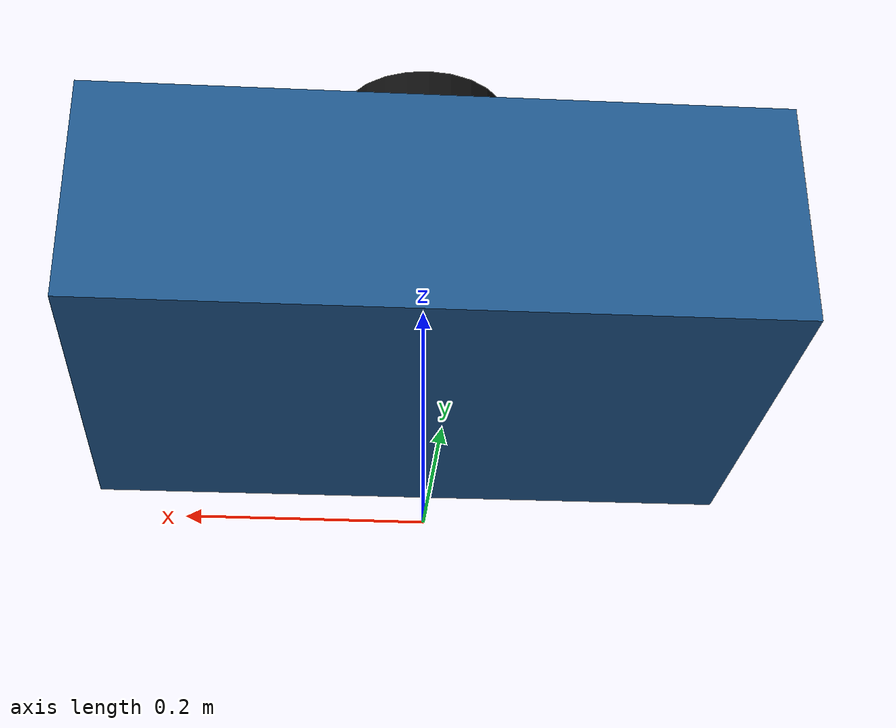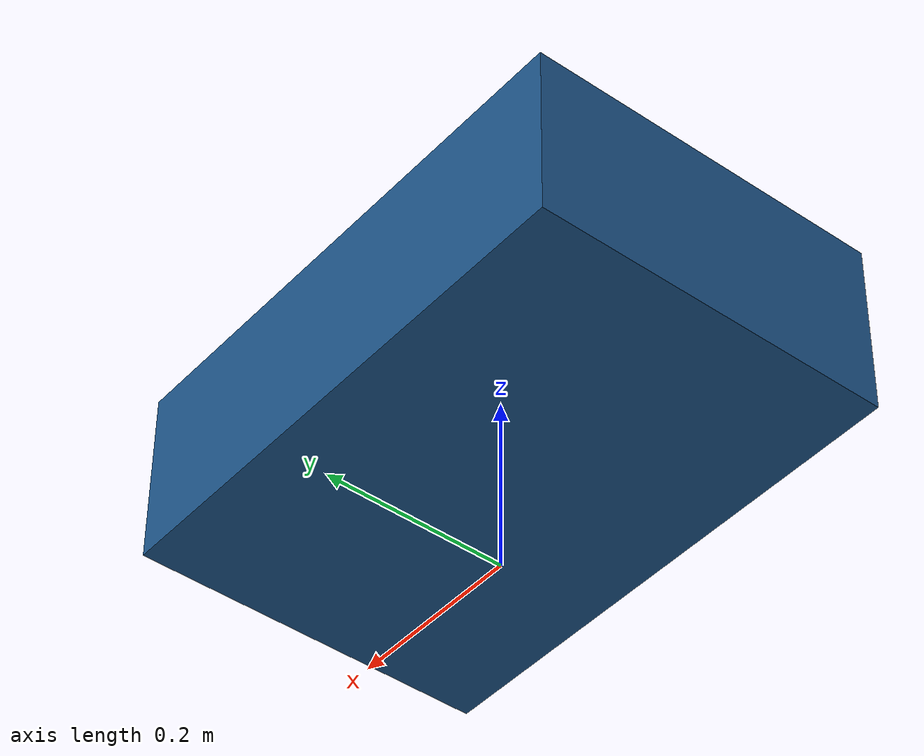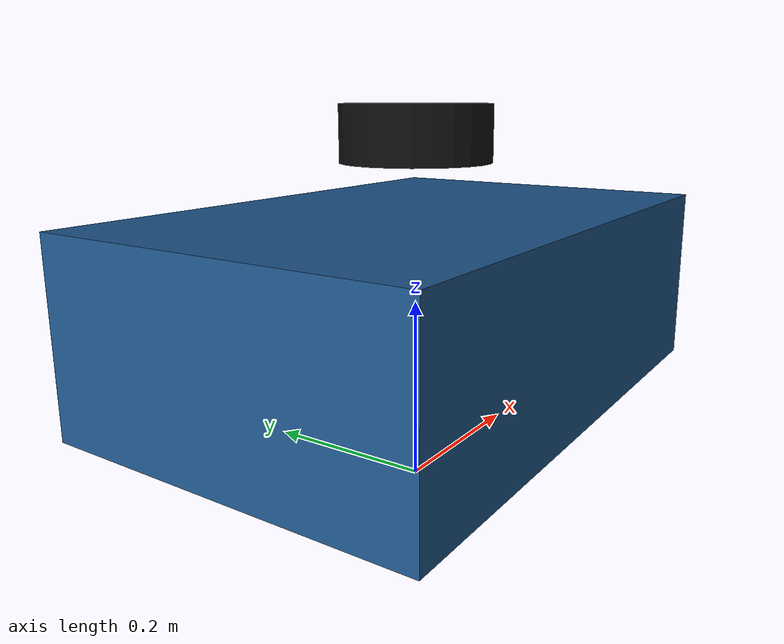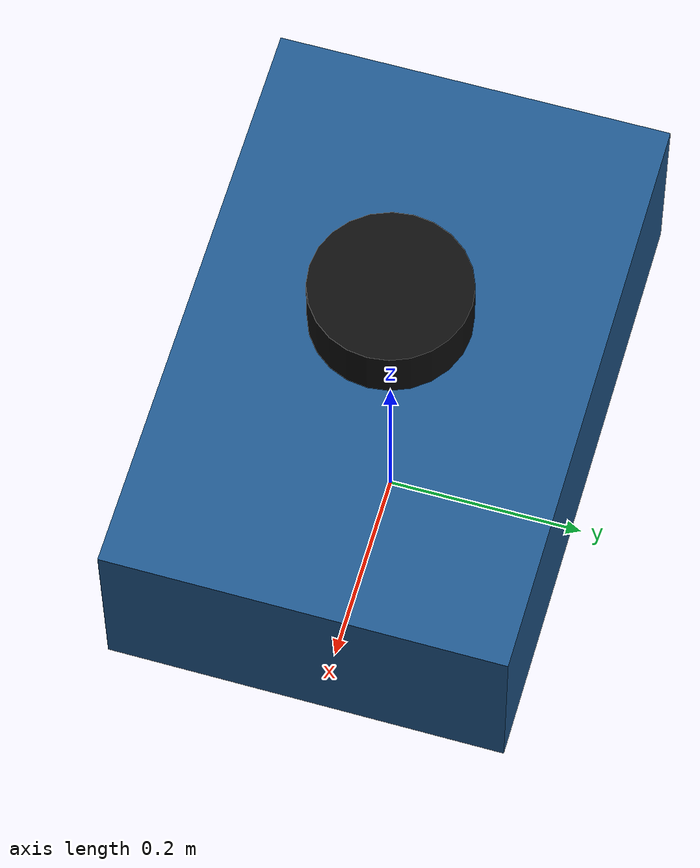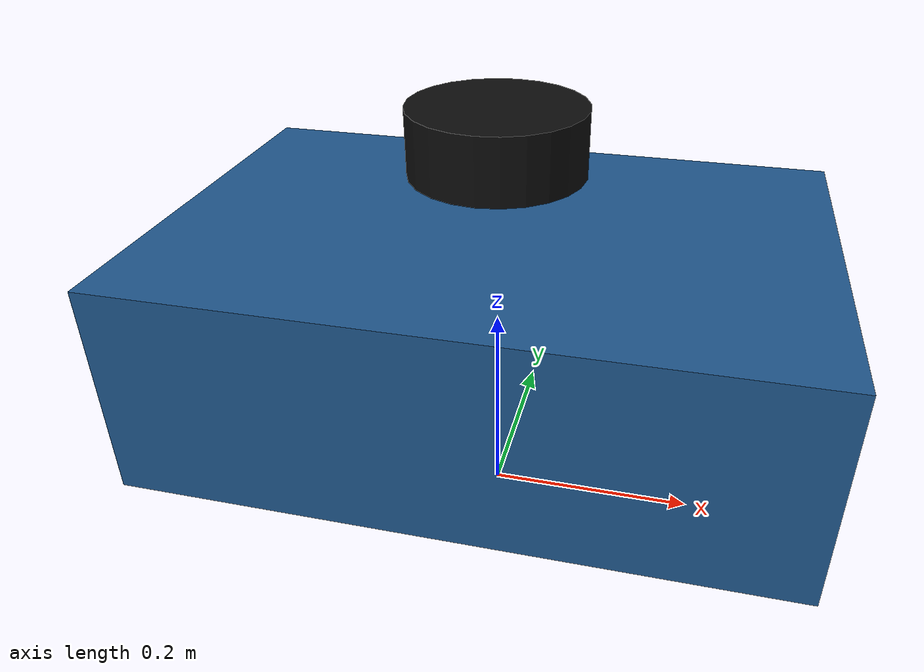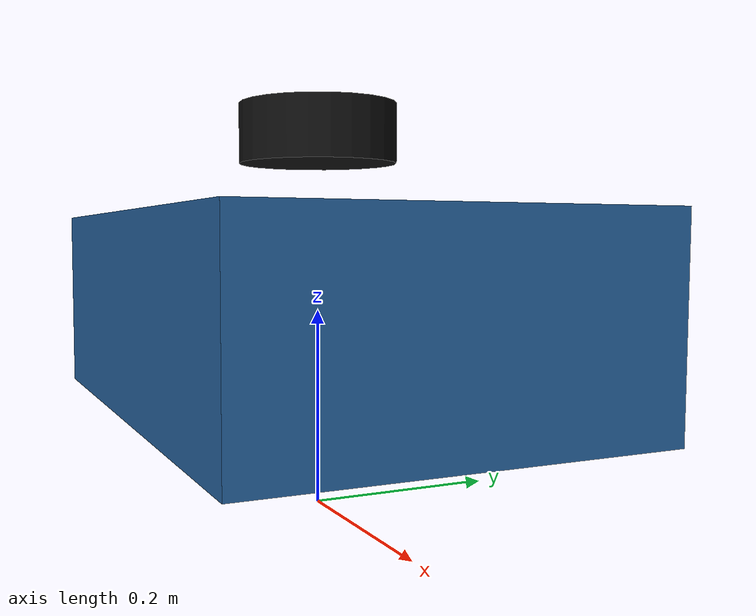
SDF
<?xml version="1.0"?>
<sdf version="1.10">
  <model name="lidar_bot">
    <pose>0 0 0.2 0 0 0</pose>
    <static>true</static>

    <link name="base_link">
      <inertial>
        <mass>5.0</mass>
        <inertia>
          <ixx>0.2</ixx>
          <iyy>0.2</iyy>
          <izz>0.2</izz>
          <ixy>0.0</ixy>
          <ixz>0.0</ixz>
          <iyz>0.0</iyz>
        </inertia>
      </inertial>
      <visual name="base_visual">
        <geometry>
          <box>
            <size>0.6 0.4 0.2</size>
          </box>
        </geometry>
        <material>
          <ambient>0.12 0.34 0.55 1</ambient>
          <diffuse>0.12 0.34 0.55 1</diffuse>
        </material>
      </visual>
      <collision name="base_collision">
        <geometry>
          <box>
            <size>0.6 0.4 0.2</size>
          </box>
        </geometry>
      </collision>
    </link>

    <link name="lidar_link">
      <pose>0 0 0.18 0 0 0</pose>
      <visual name="lidar_visual">
        <geometry>
          <cylinder>
            <radius>0.08</radius>
            <length>0.06</length>
          </cylinder>
        </geometry>
        <material>
          <ambient>0.05 0.05 0.05 1</ambient>
          <diffuse>0.05 0.05 0.05 1</diffuse>
        </material>
      </visual>
      <collision name="lidar_collision">
        <geometry>
          <cylinder>
            <radius>0.08</radius>
            <length>0.06</length>
          </cylinder>
        </geometry>
      </collision>
      <sensor name="lidar" type="gpu_lidar">
        <pose>0 0 0 0 0 0</pose>
        <topic>/lidar2</topic>
        <update_rate>10</update_rate>
        <ray>
          <scan>
            <horizontal>
              <samples>720</samples>
              <resolution>1</resolution>
              <min_angle>-3.14159</min_angle>
              <max_angle>3.14159</max_angle>
            </horizontal>
          </scan>
          <range>
            <min>0.12</min>
            <max>12.0</max>
            <resolution>0.01</resolution>
          </range>
        </ray>
        <always_on>true</always_on>
        <visualize>true</visualize>
      </sensor>
    </link>

    <joint name="lidar_joint" type="fixed">
      <parent>base_link</parent>
      <child>lidar_link</child>
    </joint>
  </model>
</sdf>
